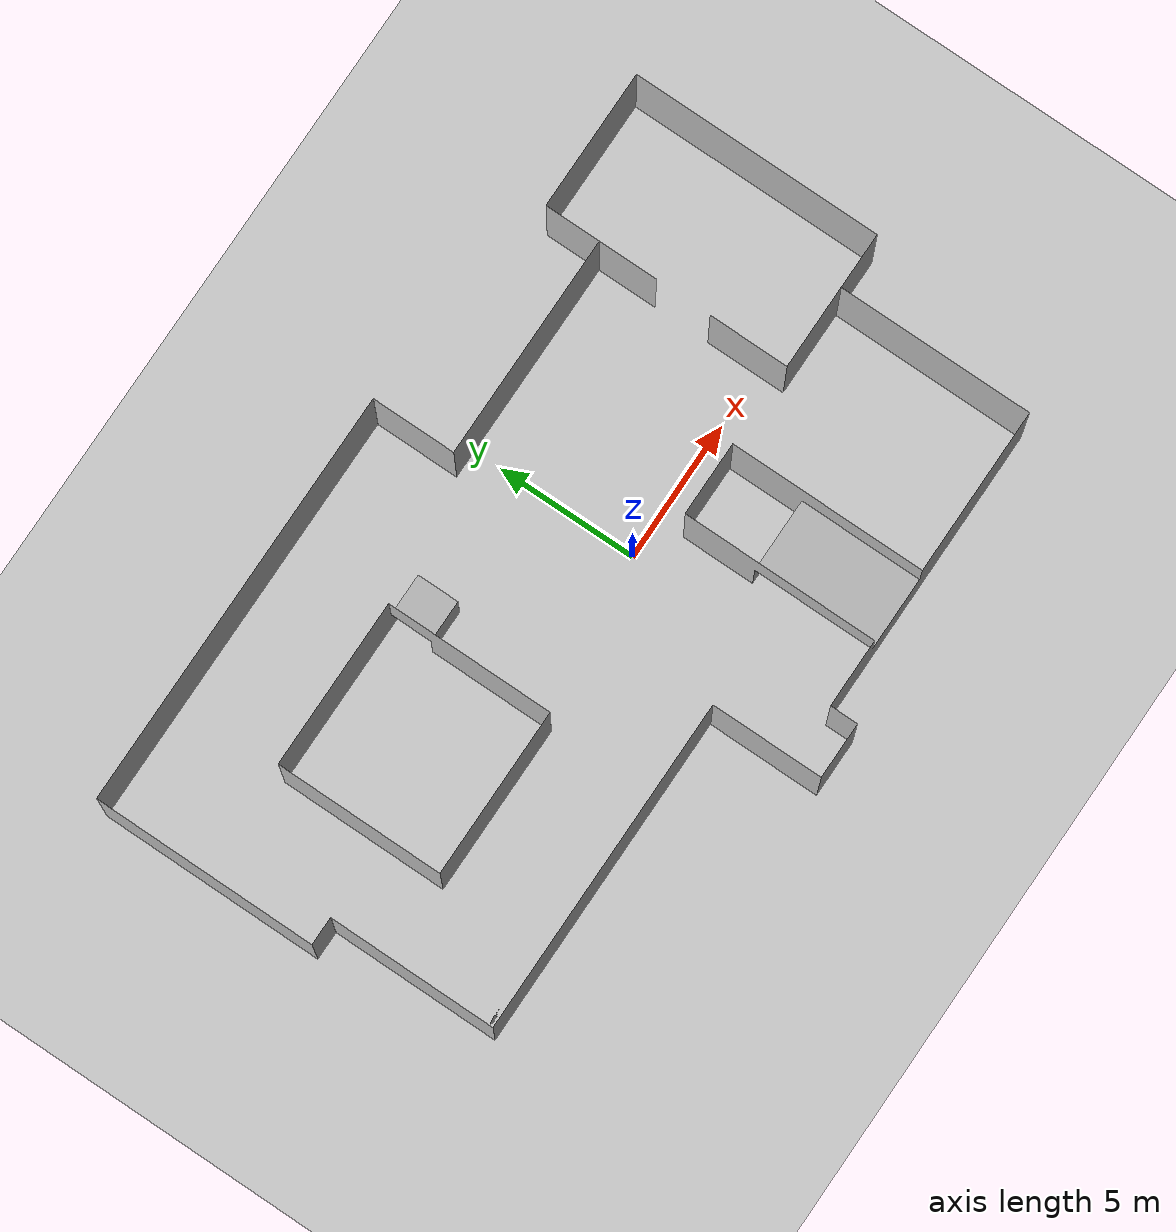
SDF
<?xml version="1.0" ?>
<sdf version="1.4">
  <world name="default">
    <include>
      <uri>model://ground_plane</uri>
    </include>

    <include>
      <uri>model://sun</uri>
    </include>

    <model name="building">
      <pose>-15 -5 -0.05 0 0 0</pose>
      <static>true</static>
      <link name="body">
        <visual name="visual">
          <geometry>
            <mesh><uri>model://building/building.dae</uri></mesh>
          </geometry>
        </visual>
        <collision name="collision">
          <geometry>
            <mesh><uri>model://building/building.stl</uri></mesh>
          </geometry>
        </collision>
      </link>
    </model>
    <gui fullscreen='0'>
      <camera name='user_camera'>
        <pose>5.0 5.0 50.0 0.0 1.57 1.57</pose>
        <view_controller>orbit</view_controller>
      </camera>
    </gui>

  </world>
</sdf>
